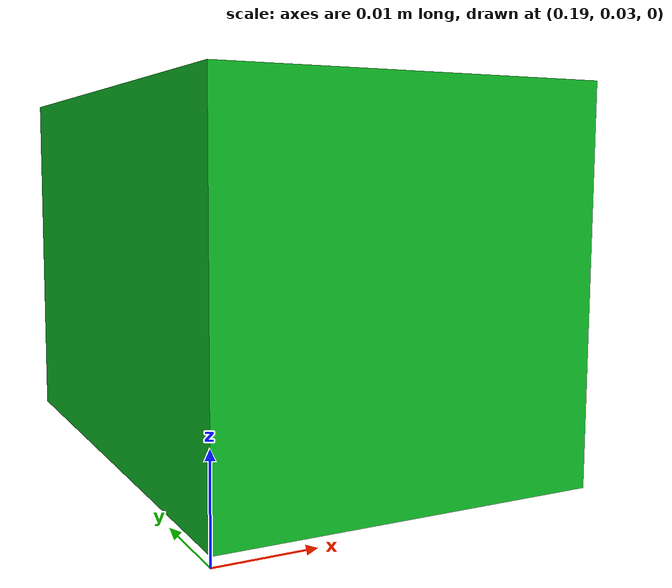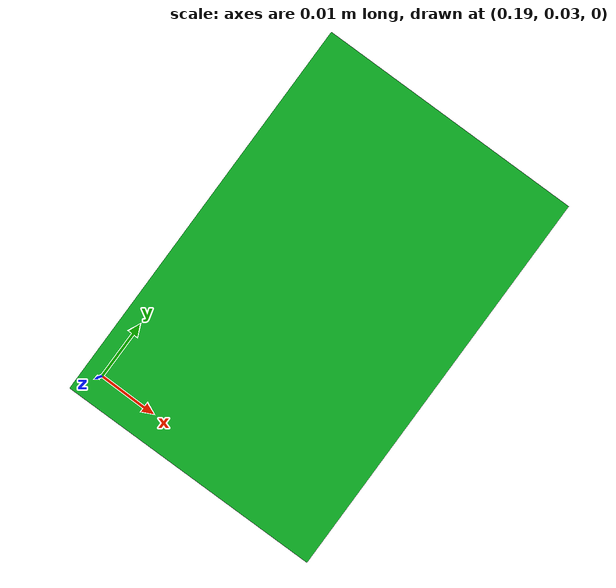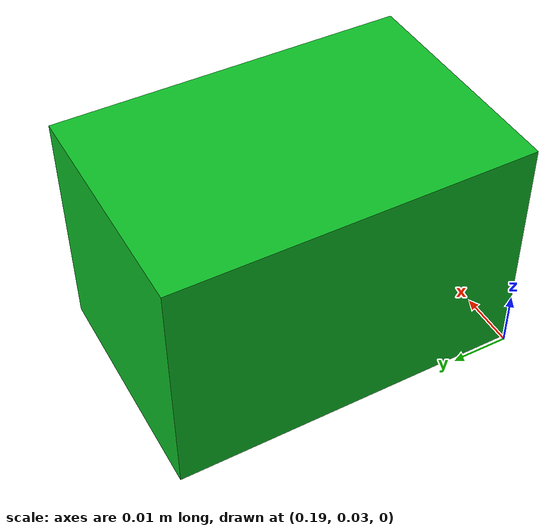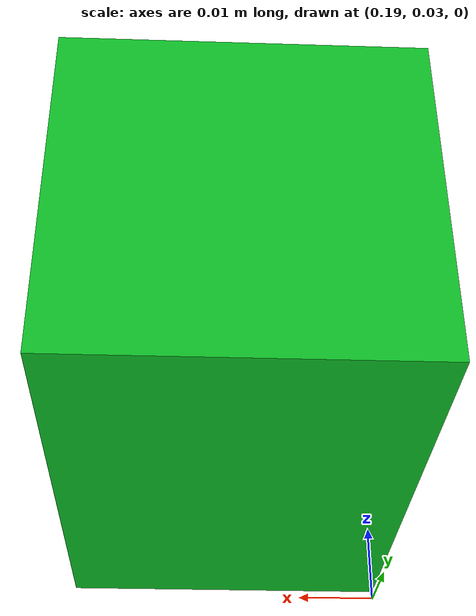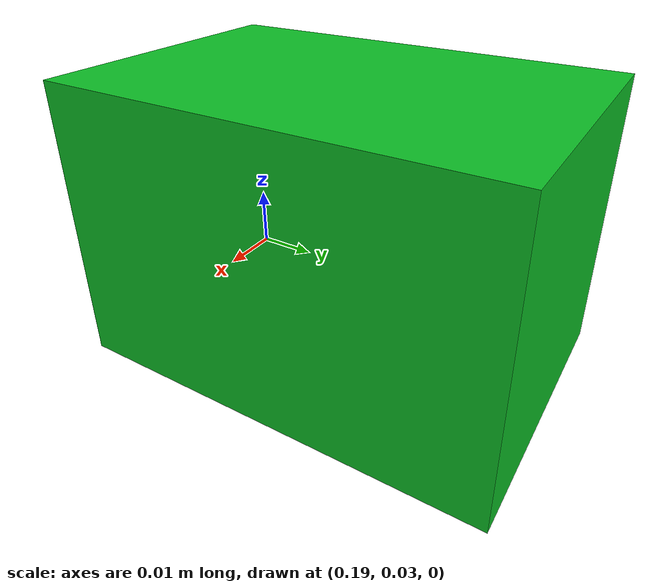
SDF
<?xml version="1.0"?>
<sdf version="1.10">
  <model name="green_block">
    <pose>0.21 0.06 0.021 0 0 0</pose>

    <link name="link">
      <!-- 관성 : 박스(질량 0.05kg) 근사. red_block과 같은 값. -->
      <inertial>
        <mass>0.05</mass>
        <inertia>
          <ixx>0.0000217</ixx>
          <ixy>0.0</ixy>
          <ixz>0.0</ixz>
          <iyy>0.0000133</iyy>
          <iyz>0.0</iyz>
          <izz>0.0000217</izz>
        </inertia>
      </inertial>

      <!-- 충돌 형상 : 바닥·그리퍼와 부딪히는 실제 몸체 -->
      <collision name="collision">
        <geometry>
          <box>
            <size>0.04 0.06 0.04</size>
          </box>
        </geometry>
        <surface>
          <friction>
            <ode>
              <mu>1.0</mu>
              <mu2>1.0</mu2>
            </ode>
          </friction>
        </surface>
      </collision>

      <!-- 시각 형상 : HSV 검출이 이 초록을 찾는다. -->
      <visual name="visual">
        <geometry>
          <box>
            <size>0.04 0.06 0.04</size>
          </box>
        </geometry>
        <material>
          <ambient>0.05 0.75 0.15 1</ambient>
          <diffuse>0.05 0.75 0.15 1</diffuse>
          <specular>0.1 0.1 0.1 1</specular>
        </material>
      </visual>
    </link>
  </model>
</sdf>
